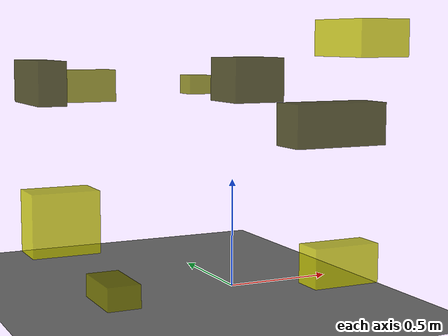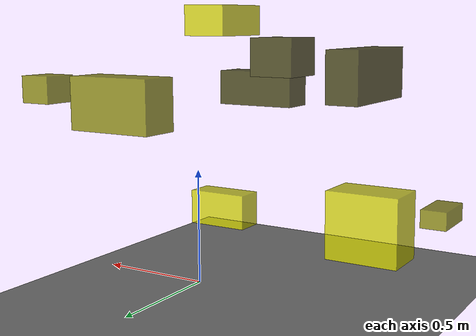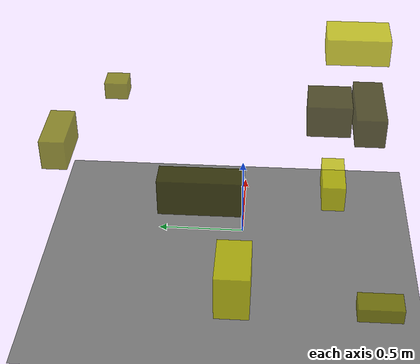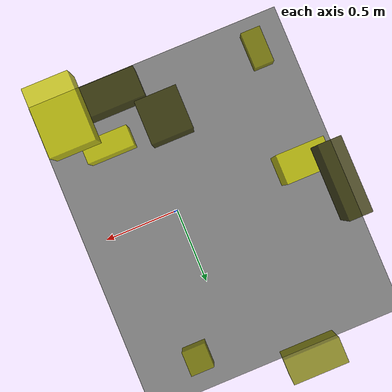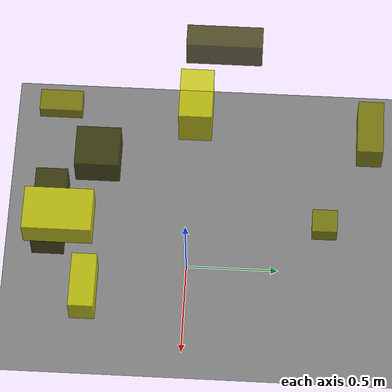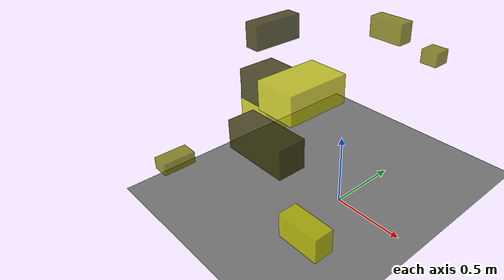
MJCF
<?xml version="1.0"?>
<mujoco model="obstacle_scene">
  <compiler angle="radian" coordinate="local"/>
  <option timestep="0.001" gravity="0 0 -9.81"/>

  <asset>
    <material name="obstacle_mat" rgba="0.8 0.8 0.0 0.8"/>
    <material name="ground_mat" rgba="0.5 0.5 0.5 1"/>
  </asset>

  <worldbody>
    <!-- Ground plane -->
    <geom name="ground" type="plane" size="3 3 0.1" material="ground_mat"/>

    <!-- Obstacles -->
    <body name="obstacle_0" pos="-0.849308 0.163949 0.953030">
      <geom name="obs_0" type="box" size="0.060695 0.197993 0.093499" rgba="0.2 0.2 0.0 0.8"/>
    </body>
    <body name="obstacle_1" pos="0.142859 0.714572 0.901257">
      <geom name="obs_1" type="box" size="0.060704 0.062465 0.048268" rgba="0.5 0.5 0.0 0.8"/>
    </body>
    <body name="obstacle_2" pos="0.229662 -0.538295 0.200555">
      <geom name="obs_2" type="box" size="0.152374 0.067499 0.084208" rgba="0.8 0.8 0.0 0.8"/>
    </body>
    <body name="obstacle_3" pos="-0.163785 -0.448133 0.976633">
      <geom name="obs_3" type="box" size="0.107455 0.112051 0.088162" rgba="0.2 0.2 0.0 0.8"/>
    </body>
    <body name="obstacle_4" pos="-0.847407 -0.735633 0.249806">
      <geom name="obs_4" type="box" size="0.062084 0.116421 0.042443" rgba="0.5 0.5 0.0 0.8"/>
    </body>
    <body name="obstacle_5" pos="-0.811803 0.014297 0.367639">
      <geom name="obs_5" type="box" size="0.147032 0.090542 0.134208" rgba="0.8 0.8 0.0 0.8"/>
    </body>
    <body name="obstacle_6" pos="0.088003 -0.685958 0.806016">
      <geom name="obs_6" type="box" size="0.201258 0.081223 0.084573" rgba="0.2 0.2 0.0 0.8"/>
    </body>
    <body name="obstacle_7" pos="-0.390433 0.934957 0.894430">
      <geom name="obs_7" type="box" size="0.144968 0.064442 0.082489" rgba="0.5 0.5 0.0 0.8"/>
    </body>
    <body name="obstacle_8" pos="0.272519 -0.605982 1.142305">
      <geom name="obs_8" type="box" size="0.112255 0.170294 0.075197" rgba="0.8 0.8 0.0 0.8"/>
    </body>
  </worldbody>
</mujoco>
